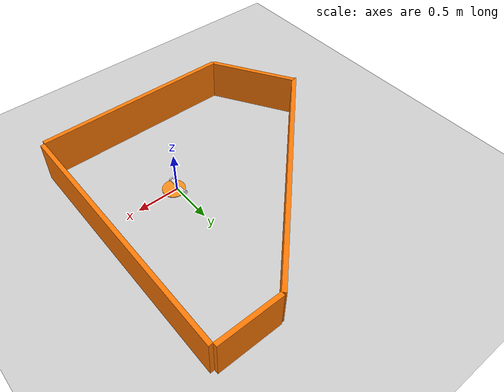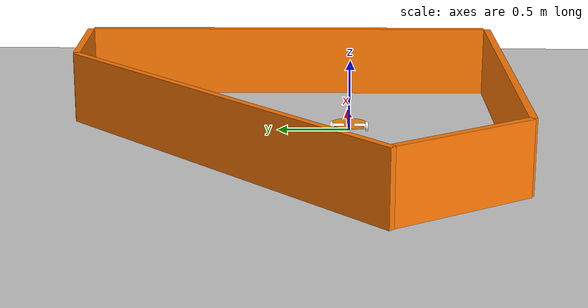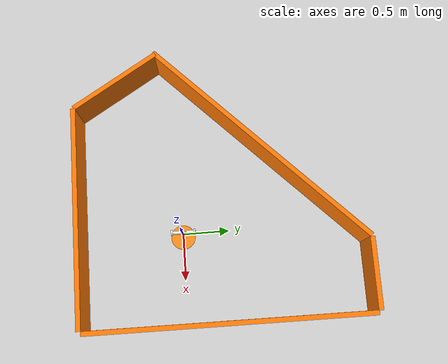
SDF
<sdf version="1.6">
 <world name="default">
  <light name="sun" type="directional">
   <pose>0 0 10 0 -0 0</pose>
   <diffuse>0.8 0.8 0.8 1</diffuse>
   <specular>0.1 0.1 0.1 1</specular>
   <attenuation>
    <range>1000</range>
    <constant>0.9</constant>
    <linear>0.01</linear>
    <quadratic>0.001</quadratic>
   </attenuation>
   <direction>-0.5 0.5 -1</direction>
  </light>
  <model name="ground_plane">
   <static>1</static>
   <link name="link">
    <collision name="collision">
     <geometry><plane><normal>0 0 1</normal><size>100 100</size></plane></geometry>
     <surface><friction><ode><mu>100</mu><mu2>50</mu2></ode></friction></surface>
    </collision>
    <visual name="visual">
     <cast_shadows>0</cast_shadows>
     <geometry><plane><normal>0 0 1</normal><size>100 100</size></plane></geometry>
     <material>
      <script><uri>file://media/materials/scripts/gazebo.material</uri><name>Gazebo/Grey</name></script>
     </material>
    </visual>
   </link>
  </model>
  <gravity>0 0 -9.8</gravity>
  <magnetic_field>6e-06 2.3e-05 -4.2e-05</magnetic_field>
  <atmosphere type="adiabatic"/>
  <physics name="default_physics" default="0" type="ode">
   <max_step_size>0.001</max_step_size>
   <real_time_factor>1</real_time_factor>
   <real_time_update_rate>1000</real_time_update_rate>
  </physics>
  <scene><ambient>0.4 0.4 0.4 1</ambient><background>0.7 0.7 0.7 1</background><shadows>1</shadows></scene>
  <spherical_coordinates>
   <surface_model>EARTH_WGS84</surface_model>
   <latitude_deg>0</latitude_deg>
   <longitude_deg>0</longitude_deg>
   <elevation>0</elevation>
   <heading_deg>0</heading_deg>
  </spherical_coordinates>
  <audio><device>default</device></audio>
  <model name="xrobot">
   <link name="base_footprint">
    <inertial>
     <pose>-8.4e-05 0 0.035 0 -0 0</pose>
     <mass>13.02</mass>
     <inertia>
      <ixx>0.0551585</ixx>
      <ixy>-9.15993e-24</ixy>
      <ixz>0</ixz>
      <iyy>0.0551064</iyy>
      <iyz>0</iyz>
      <izz>0.110027</izz>
     </inertia>
    </inertial>
    <collision name="base_footprint_fixed_joint_lump__base_link_collision">
     <pose>0 0 0.035 0 -0 0</pose>
     <geometry><cylinder><length>0.01</length><radius>0.13</radius></cylinder></geometry>
    </collision>
    <collision name="base_footprint_fixed_joint_lump__left_motor_link_collision_1">
     <pose>-0.055 -0.075 0.035 1.5708 -0 0</pose>
     <geometry><cylinder><length>0.08</length><radius>0.02</radius></cylinder></geometry>
    </collision>
    <collision name="base_footprint_fixed_joint_lump__right_motor_link_collision_2">
     <pose>-0.055 0.075 0.035 1.5708 -0 0</pose>
     <geometry><cylinder><length>0.08</length><radius>0.02</radius></cylinder></geometry>
    </collision>
    <visual name="base_footprint_visual">
     <geometry><box><size>0.001 0.001 0.001</size></box></geometry>
     <material><script><uri>__default__</uri><name>__default__</name></script></material>
    </visual>
    <visual name="base_footprint_fixed_joint_lump__base_link_visual_1">
     <pose>0 0 0.035 0 -0 0</pose>
     <geometry><cylinder><length>0.01</length><radius>0.13</radius></cylinder></geometry>
     <material>
      <script><name>Gazebo/Orange</name><uri>file://media/materials/scripts/gazebo.material</uri></script>
     </material>
    </visual>
    <visual name="base_footprint_fixed_joint_lump__left_motor_link_visual_2">
     <pose>-0.055 -0.075 0.035 1.5708 -0 0</pose>
     <geometry><cylinder><length>0.08</length><radius>0.02</radius></cylinder></geometry>
     <material>
      <script><name>Gazebo/White</name><uri>file://media/materials/scripts/gazebo.material</uri></script>
     </material>
    </visual>
    <visual name="base_footprint_fixed_joint_lump__right_motor_link_visual_3">
     <pose>-0.055 0.075 0.035 1.5708 -0 0</pose>
     <geometry><cylinder><length>0.08</length><radius>0.02</radius></cylinder></geometry>
     <material>
      <script><name>Gazebo/White</name><uri>file://media/materials/scripts/gazebo.material</uri></script>
     </material>
    </visual>
   </link>
   <link name="front_caster_link">
    <pose>0.1135 0 0.0185 0 -0 0</pose>
    <inertial>
     <mass>0.5</mass>
     <inertia><ixx>4.5e-05</ixx><ixy>0</ixy><ixz>0</ixz><iyy>4.5e-05</iyy><iyz>0</iyz><izz>4.5e-05</izz></inertia>
    </inertial>
    <collision name="front_caster_link_collision">
     <geometry><sphere><radius>0.015</radius></sphere></geometry>
    </collision>
    <visual name="front_caster_link_visual">
     <geometry><sphere><radius>0.015</radius></sphere></geometry>
     <material>
      <script><name>Gazebo/Blue</name><uri>file://media/materials/scripts/gazebo.material</uri></script>
     </material>
    </visual>
   </link>
   <joint name="front_caster_joint" type="revolute">
    <child>front_caster_link</child>
    <parent>base_footprint</parent>
    <axis>
     <xyz>0 1 0</xyz>
     <limit><lower>-1e+16</lower><upper>1e+16</upper></limit>
     <dynamics><spring_reference>0</spring_reference><spring_stiffness>0</spring_stiffness></dynamics>
     <use_parent_model_frame>1</use_parent_model_frame>
    </axis>
   </joint>
   <link name="left_wheel_link">
    <pose>-0.055 -0.1235 0.035 0 -0 0</pose>
    <inertial>
     <mass>15</mass>
     <inertia>
      <ixx>0.004445</ixx>
      <ixy>0</ixy>
      <ixz>0</ixz>
      <iyy>0.004445</iyy>
      <iyz>0</iyz>
      <izz>0.0081675</izz>
     </inertia>
    </inertial>
    <collision name="left_wheel_link_collision">
     <pose>0 0 0 1.5708 -0 0</pose>
     <geometry><cylinder><length>0.017</length><radius>0.033</radius></cylinder></geometry>
    </collision>
    <visual name="left_wheel_link_visual">
     <pose>0 0 0 1.5708 -0 0</pose>
     <geometry><cylinder><length>0.017</length><radius>0.033</radius></cylinder></geometry>
     <material>
      <script><name>Gazebo/White</name><uri>file://media/materials/scripts/gazebo.material</uri></script>
     </material>
    </visual>
   </link>
   <joint name="left_wheel_joint" type="revolute">
    <child>left_wheel_link</child>
    <parent>base_footprint</parent>
    <axis>
     <xyz>0 1 0</xyz>
     <limit><lower>-1e+16</lower><upper>1e+16</upper></limit>
     <dynamics><spring_reference>0</spring_reference><spring_stiffness>0</spring_stiffness></dynamics>
     <use_parent_model_frame>1</use_parent_model_frame>
    </axis>
   </joint>
   <link name="right_wheel_link">
    <pose>-0.055 0.1235 0.035 0 -0 0</pose>
    <inertial>
     <mass>15</mass>
     <inertia>
      <ixx>0.004445</ixx>
      <ixy>0</ixy>
      <ixz>0</ixz>
      <iyy>0.004445</iyy>
      <iyz>0</iyz>
      <izz>0.0081675</izz>
     </inertia>
    </inertial>
    <collision name="right_wheel_link_collision">
     <pose>0 0 0 1.5708 -0 0</pose>
     <geometry><cylinder><length>0.017</length><radius>0.033</radius></cylinder></geometry>
    </collision>
    <visual name="right_wheel_link_visual">
     <pose>0 0 0 1.5708 -0 0</pose>
     <geometry><cylinder><length>0.017</length><radius>0.033</radius></cylinder></geometry>
     <material>
      <script><name>Gazebo/White</name><uri>file://media/materials/scripts/gazebo.material</uri></script>
     </material>
    </visual>
   </link>
   <joint name="right_wheel_joint" type="revolute">
    <child>right_wheel_link</child>
    <parent>base_footprint</parent>
    <axis>
     <xyz>0 1 0</xyz>
     <limit><lower>-1e+16</lower><upper>1e+16</upper></limit>
     <dynamics><spring_reference>0</spring_reference><spring_stiffness>0</spring_stiffness></dynamics>
     <use_parent_model_frame>1</use_parent_model_frame>
    </axis>
   </joint>
   <static>0</static>
   <plugin name="differential_drive_controller" filename="libgazebo_ros_diff_drive.so">
    <rosDebugLevel>Debug</rosDebugLevel>
    <publishWheelTF>1</publishWheelTF>
    <robotNamespace>/</robotNamespace>
    <publishTf>1</publishTf>
    <publishWheelJointState>1</publishWheelJointState>
    <alwaysOn>1</alwaysOn>
    <updateRate>100.0</updateRate>
    <legacyMode>1</legacyMode>
    <leftJoint>left_wheel_joint</leftJoint>
    <rightJoint>right_wheel_joint</rightJoint>
    <wheelSeparation>0.097</wheelSeparation>
    <wheelDiameter>0.066</wheelDiameter>
    <broadcastTF>1</broadcastTF>
    <wheelTorque>30</wheelTorque>
    <wheelAcceleration>1.8</wheelAcceleration>
    <commandTopic>cmd_vel</commandTopic>
    <odometryFrame>odom</odometryFrame>
    <odometryTopic>odom</odometryTopic>
    <robotBaseFrame>base_footprint</robotBaseFrame>
   </plugin>
   <pose>0.040277 0.001594 -0.002488 -0 0.008907 -0.006017</pose>
  </model>
  <model name="slamopto">
   <pose>-0.463441 0.435503 0 0 -0 0</pose>
   <link name="Wall_10">
    <collision name="Wall_10_Collision">
     <geometry><box><size>0.737 0.05 0.5</size></box></geometry>
     <pose>0 0 0.25 0 -0 0</pose>
    </collision>
    <visual name="Wall_10_Visual">
     <pose>0 0 0.25 0 -0 0</pose>
     <geometry><box><size>0.737 0.05 0.5</size></box></geometry>
     <material>
      <script><uri>file://media/materials/scripts/gazebo.material</uri><name>Gazebo/Grey</name></script>
      <ambient>0.996078 0.47451 0.0196078 1</ambient>
     </material>
     <meta><layer>0</layer></meta>
    </visual>
    <pose>1.05241 1.49663 0 0 -0 3.14159</pose>
   </link>
   <link name="Wall_12">
    <collision name="Wall_12_Collision">
     <geometry><box><size>3 0.05 0.5</size></box></geometry>
     <pose>0 0 0.25 0 -0 0</pose>
    </collision>
    <visual name="Wall_12_Visual">
     <pose>0 0 0.25 0 -0 0</pose>
     <geometry><box><size>3 0.05 0.5</size></box></geometry>
     <material>
      <script><uri>file://media/materials/scripts/gazebo.material</uri><name>Gazebo/Grey</name></script>
      <ambient>0.996078 0.47451 0.0196078 1</ambient>
     </material>
     <meta><layer>0</layer></meta>
    </visual>
    <pose>-0.38957 0.436532 0 0 -0 -2.35619</pose>
   </link>
   <link name="Wall_14">
    <collision name="Wall_14_Collision">
     <geometry><box><size>1.04559 0.05 0.5</size></box></geometry>
     <pose>0 0 0.25 0 -0 0</pose>
    </collision>
    <visual name="Wall_14_Visual">
     <pose>0 0 0.25 0 -0 0</pose>
     <geometry><box><size>1.04559 0.05 0.5</size></box></geometry>
     <material>
      <script><uri>file://media/materials/scripts/gazebo.material</uri><name>Gazebo/Grey</name></script>
      <ambient>0.996078 0.47451 0.0196078 1</ambient>
     </material>
     <meta><layer>0</layer></meta>
    </visual>
    <pose>-1.15709 -1.04672 0 0 -0 -1.02125</pose>
   </link>
   <link name="Wall_6">
    <collision name="Wall_6_Collision">
     <geometry><box><size>2.3 0.05 0.5</size></box></geometry>
     <pose>0 0 0.25 0 -0 0</pose>
    </collision>
    <visual name="Wall_6_Visual">
     <pose>0 0 0.25 0 -0 0</pose>
     <geometry><box><size>2.3 0.05 0.5</size></box></geometry>
     <material>
      <script><uri>file://media/materials/scripts/gazebo.material</uri><name>Gazebo/Grey</name></script>
      <ambient>0.996078 0.47451 0.0196078 1</ambient>
     </material>
     <meta><layer>0</layer></meta>
    </visual>
    <pose>0.268194 -1.49663 0 0 -0 0</pose>
   </link>
   <link name="Wall_8">
    <collision name="Wall_8_Collision">
     <geometry><box><size>2.95 0.05 0.5</size></box></geometry>
     <pose>0 0 0.25 0 -0 0</pose>
    </collision>
    <visual name="Wall_8_Visual">
     <pose>0 0 0.25 0 -0 0</pose>
     <geometry><box><size>2.95 0.05 0.5</size></box></geometry>
     <material>
      <script><uri>file://media/materials/scripts/gazebo.material</uri><name>Gazebo/Grey</name></script>
      <ambient>0.996078 0.47451 0.0196078 1</ambient>
     </material>
     <meta><layer>0</layer></meta>
    </visual>
    <pose>1.44291 0.001727 0 0 -0 -1.5708</pose>
   </link>
   <static>1</static>
  </model>
 </world>
</sdf>
